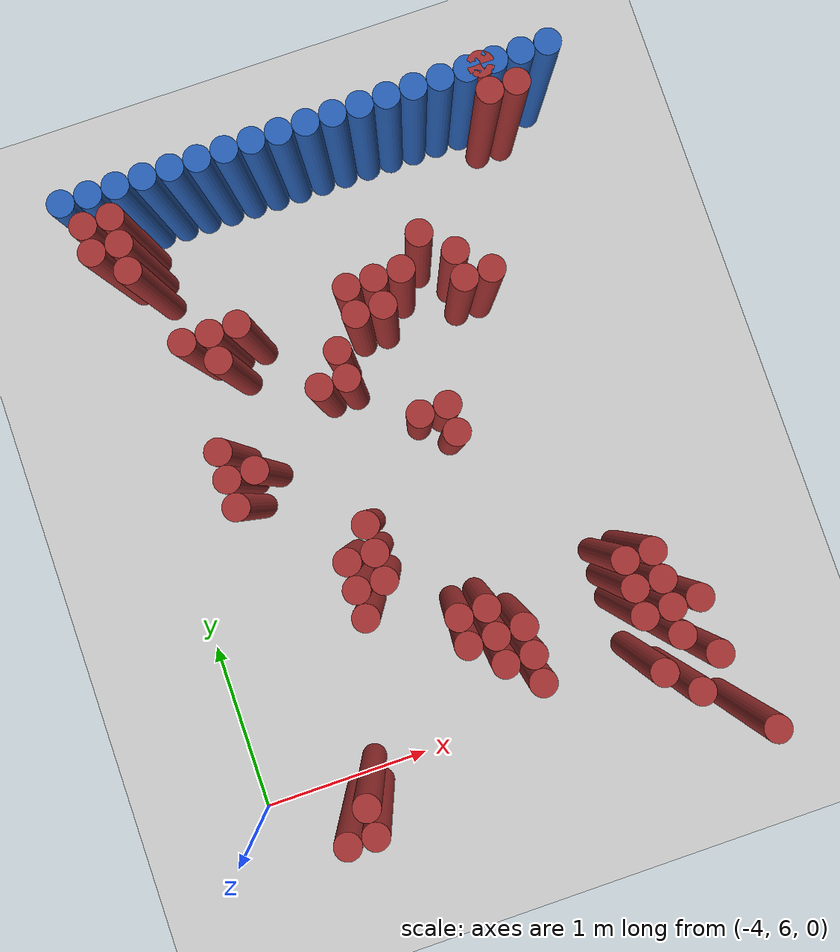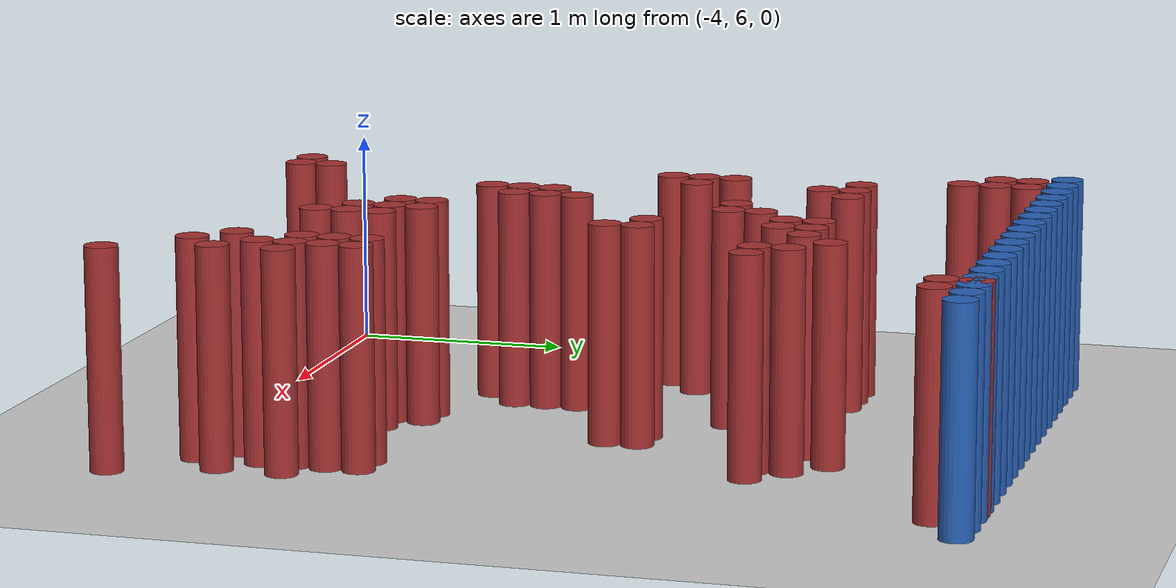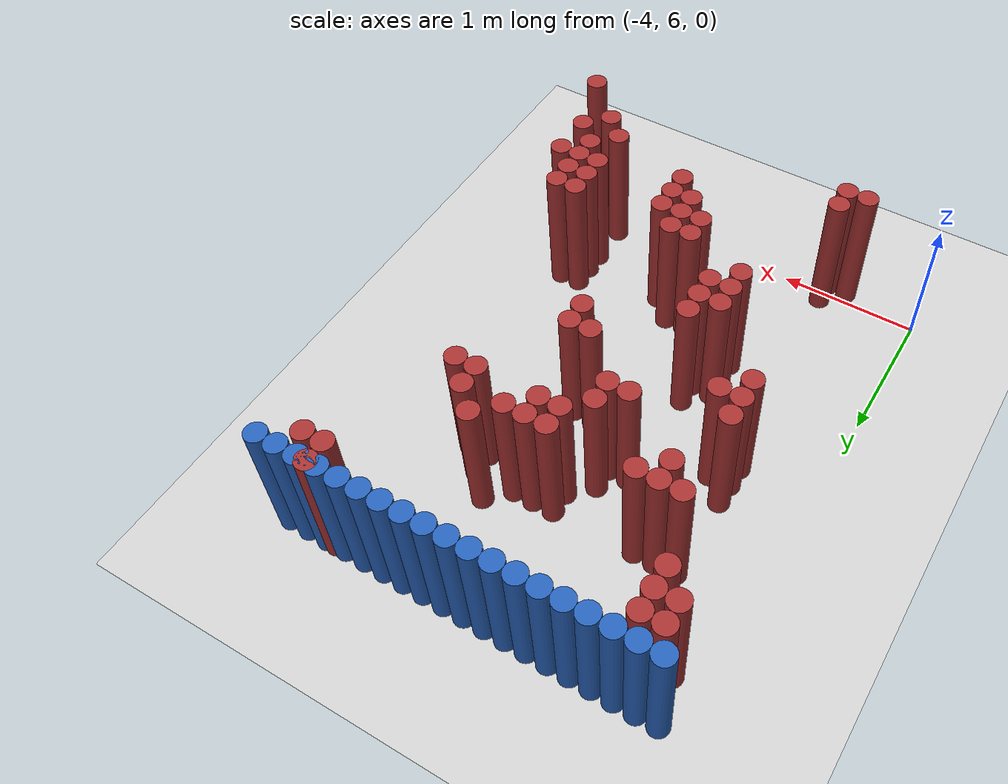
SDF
<sdf version="1.6">
 <world name="barn_world">
  <model name="ground_plane">
   <static>1</static>
   <link name="link">
    <collision name="collision">
     <geometry><plane><normal>0 0 1</normal><size>100 100</size></plane></geometry>
    </collision>
    <visual name="visual">
     <geometry><plane><normal>0 0 1</normal><size>100 100</size></plane></geometry>
     <material>
      <script><uri>file://media/materials/scripts/gazebo.material</uri><name>Gazebo/Grey</name></script>
     </material>
    </visual>
   </link>
  </model>
  <model name="unit_cylinder_188">
   <static>1</static>
   <pose>-3.7500 9.2250 0.5 0 0 0</pose>
   <link name="link">
    <collision name="collision">
     <geometry><cylinder><radius>0.075</radius><length>1</length></cylinder></geometry>
    </collision>
    <visual name="visual">
     <geometry><cylinder><radius>0.075</radius><length>1</length></cylinder></geometry>
     <material><ambient>0.648 0.192 0.192 1</ambient><diffuse>0.648 0.192 0.192 1</diffuse></material>
    </visual>
   </link>
  </model>
  <model name="unit_cylinder_189">
   <static>1</static>
   <pose>-3.7500 9.3750 0.5 0 0 0</pose>
   <link name="link">
    <collision name="collision">
     <geometry><cylinder><radius>0.075</radius><length>1</length></cylinder></geometry>
    </collision>
    <visual name="visual">
     <geometry><cylinder><radius>0.075</radius><length>1</length></cylinder></geometry>
     <material><ambient>0.648 0.192 0.192 1</ambient><diffuse>0.648 0.192 0.192 1</diffuse></material>
    </visual>
   </link>
  </model>
  <model name="unit_cylinder_190">
   <static>1</static>
   <pose>-3.6000 9.0750 0.5 0 0 0</pose>
   <link name="link">
    <collision name="collision">
     <geometry><cylinder><radius>0.075</radius><length>1</length></cylinder></geometry>
    </collision>
    <visual name="visual">
     <geometry><cylinder><radius>0.075</radius><length>1</length></cylinder></geometry>
     <material><ambient>0.648 0.192 0.192 1</ambient><diffuse>0.648 0.192 0.192 1</diffuse></material>
    </visual>
   </link>
  </model>
  <model name="unit_cylinder_191">
   <static>1</static>
   <pose>-3.6000 9.2250 0.5 0 0 0</pose>
   <link name="link">
    <collision name="collision">
     <geometry><cylinder><radius>0.075</radius><length>1</length></cylinder></geometry>
    </collision>
    <visual name="visual">
     <geometry><cylinder><radius>0.075</radius><length>1</length></cylinder></geometry>
     <material><ambient>0.648 0.192 0.192 1</ambient><diffuse>0.648 0.192 0.192 1</diffuse></material>
    </visual>
   </link>
  </model>
  <model name="unit_cylinder_192">
   <static>1</static>
   <pose>-3.6000 9.3750 0.5 0 0 0</pose>
   <link name="link">
    <collision name="collision">
     <geometry><cylinder><radius>0.075</radius><length>1</length></cylinder></geometry>
    </collision>
    <visual name="visual">
     <geometry><cylinder><radius>0.075</radius><length>1</length></cylinder></geometry>
     <material><ambient>0.648 0.192 0.192 1</ambient><diffuse>0.648 0.192 0.192 1</diffuse></material>
    </visual>
   </link>
  </model>
  <model name="unit_cylinder_193">
   <static>1</static>
   <pose>-3.4500 5.9250 0.5 0 0 0</pose>
   <link name="link">
    <collision name="collision">
     <geometry><cylinder><radius>0.075</radius><length>1</length></cylinder></geometry>
    </collision>
    <visual name="visual">
     <geometry><cylinder><radius>0.075</radius><length>1</length></cylinder></geometry>
     <material><ambient>0.648 0.192 0.192 1</ambient><diffuse>0.648 0.192 0.192 1</diffuse></material>
    </visual>
   </link>
  </model>
  <model name="unit_cylinder_194">
   <static>1</static>
   <pose>-3.4500 7.7250 0.5 0 0 0</pose>
   <link name="link">
    <collision name="collision">
     <geometry><cylinder><radius>0.075</radius><length>1</length></cylinder></geometry>
    </collision>
    <visual name="visual">
     <geometry><cylinder><radius>0.075</radius><length>1</length></cylinder></geometry>
     <material><ambient>0.648 0.192 0.192 1</ambient><diffuse>0.648 0.192 0.192 1</diffuse></material>
    </visual>
   </link>
  </model>
  <model name="unit_cylinder_195">
   <static>1</static>
   <pose>-3.4500 7.8750 0.5 0 0 0</pose>
   <link name="link">
    <collision name="collision">
     <geometry><cylinder><radius>0.075</radius><length>1</length></cylinder></geometry>
    </collision>
    <visual name="visual">
     <geometry><cylinder><radius>0.075</radius><length>1</length></cylinder></geometry>
     <material><ambient>0.648 0.192 0.192 1</ambient><diffuse>0.648 0.192 0.192 1</diffuse></material>
    </visual>
   </link>
  </model>
  <model name="unit_cylinder_196">
   <static>1</static>
   <pose>-3.4500 8.0250 0.5 0 0 0</pose>
   <link name="link">
    <collision name="collision">
     <geometry><cylinder><radius>0.075</radius><length>1</length></cylinder></geometry>
    </collision>
    <visual name="visual">
     <geometry><cylinder><radius>0.075</radius><length>1</length></cylinder></geometry>
     <material><ambient>0.648 0.192 0.192 1</ambient><diffuse>0.648 0.192 0.192 1</diffuse></material>
    </visual>
   </link>
  </model>
  <model name="unit_cylinder_197">
   <static>1</static>
   <pose>-3.4500 8.6250 0.5 0 0 0</pose>
   <link name="link">
    <collision name="collision">
     <geometry><cylinder><radius>0.075</radius><length>1</length></cylinder></geometry>
    </collision>
    <visual name="visual">
     <geometry><cylinder><radius>0.075</radius><length>1</length></cylinder></geometry>
     <material><ambient>0.648 0.192 0.192 1</ambient><diffuse>0.648 0.192 0.192 1</diffuse></material>
    </visual>
   </link>
  </model>
  <model name="unit_cylinder_198">
   <static>1</static>
   <pose>-3.3000 5.9250 0.5 0 0 0</pose>
   <link name="link">
    <collision name="collision">
     <geometry><cylinder><radius>0.075</radius><length>1</length></cylinder></geometry>
    </collision>
    <visual name="visual">
     <geometry><cylinder><radius>0.075</radius><length>1</length></cylinder></geometry>
     <material><ambient>0.648 0.192 0.192 1</ambient><diffuse>0.648 0.192 0.192 1</diffuse></material>
    </visual>
   </link>
  </model>
  <model name="unit_cylinder_199">
   <static>1</static>
   <pose>-3.3000 6.0750 0.5 0 0 0</pose>
   <link name="link">
    <collision name="collision">
     <geometry><cylinder><radius>0.075</radius><length>1</length></cylinder></geometry>
    </collision>
    <visual name="visual">
     <geometry><cylinder><radius>0.075</radius><length>1</length></cylinder></geometry>
     <material><ambient>0.648 0.192 0.192 1</ambient><diffuse>0.648 0.192 0.192 1</diffuse></material>
    </visual>
   </link>
  </model>
  <model name="unit_cylinder_200">
   <static>1</static>
   <pose>-3.3000 7.8750 0.5 0 0 0</pose>
   <link name="link">
    <collision name="collision">
     <geometry><cylinder><radius>0.075</radius><length>1</length></cylinder></geometry>
    </collision>
    <visual name="visual">
     <geometry><cylinder><radius>0.075</radius><length>1</length></cylinder></geometry>
     <material><ambient>0.648 0.192 0.192 1</ambient><diffuse>0.648 0.192 0.192 1</diffuse></material>
    </visual>
   </link>
  </model>
  <model name="unit_cylinder_201">
   <static>1</static>
   <pose>-3.3000 8.4750 0.5 0 0 0</pose>
   <link name="link">
    <collision name="collision">
     <geometry><cylinder><radius>0.075</radius><length>1</length></cylinder></geometry>
    </collision>
    <visual name="visual">
     <geometry><cylinder><radius>0.075</radius><length>1</length></cylinder></geometry>
     <material><ambient>0.648 0.192 0.192 1</ambient><diffuse>0.648 0.192 0.192 1</diffuse></material>
    </visual>
   </link>
  </model>
  <model name="unit_cylinder_202">
   <static>1</static>
   <pose>-3.3000 8.6250 0.5 0 0 0</pose>
   <link name="link">
    <collision name="collision">
     <geometry><cylinder><radius>0.075</radius><length>1</length></cylinder></geometry>
    </collision>
    <visual name="visual">
     <geometry><cylinder><radius>0.075</radius><length>1</length></cylinder></geometry>
     <material><ambient>0.648 0.192 0.192 1</ambient><diffuse>0.648 0.192 0.192 1</diffuse></material>
    </visual>
   </link>
  </model>
  <model name="unit_cylinder_203">
   <static>1</static>
   <pose>-3.1500 8.6250 0.5 0 0 0</pose>
   <link name="link">
    <collision name="collision">
     <geometry><cylinder><radius>0.075</radius><length>1</length></cylinder></geometry>
    </collision>
    <visual name="visual">
     <geometry><cylinder><radius>0.075</radius><length>1</length></cylinder></geometry>
     <material><ambient>0.648 0.192 0.192 1</ambient><diffuse>0.648 0.192 0.192 1</diffuse></material>
    </visual>
   </link>
  </model>
  <model name="unit_cylinder_206">
   <static>1</static>
   <pose>-3.0000 6.9750 0.5 0 0 0</pose>
   <link name="link">
    <collision name="collision">
     <geometry><cylinder><radius>0.075</radius><length>1</length></cylinder></geometry>
    </collision>
    <visual name="visual">
     <geometry><cylinder><radius>0.075</radius><length>1</length></cylinder></geometry>
     <material><ambient>0.648 0.192 0.192 1</ambient><diffuse>0.648 0.192 0.192 1</diffuse></material>
    </visual>
   </link>
  </model>
  <model name="unit_cylinder_207">
   <static>1</static>
   <pose>-3.0000 7.1250 0.5 0 0 0</pose>
   <link name="link">
    <collision name="collision">
     <geometry><cylinder><radius>0.075</radius><length>1</length></cylinder></geometry>
    </collision>
    <visual name="visual">
     <geometry><cylinder><radius>0.075</radius><length>1</length></cylinder></geometry>
     <material><ambient>0.648 0.192 0.192 1</ambient><diffuse>0.648 0.192 0.192 1</diffuse></material>
    </visual>
   </link>
  </model>
  <model name="unit_cylinder_208">
   <static>1</static>
   <pose>-3.0000 7.2750 0.5 0 0 0</pose>
   <link name="link">
    <collision name="collision">
     <geometry><cylinder><radius>0.075</radius><length>1</length></cylinder></geometry>
    </collision>
    <visual name="visual">
     <geometry><cylinder><radius>0.075</radius><length>1</length></cylinder></geometry>
     <material><ambient>0.648 0.192 0.192 1</ambient><diffuse>0.648 0.192 0.192 1</diffuse></material>
    </visual>
   </link>
  </model>
  <model name="unit_cylinder_210">
   <static>1</static>
   <pose>-2.8500 7.1250 0.5 0 0 0</pose>
   <link name="link">
    <collision name="collision">
     <geometry><cylinder><radius>0.075</radius><length>1</length></cylinder></geometry>
    </collision>
    <visual name="visual">
     <geometry><cylinder><radius>0.075</radius><length>1</length></cylinder></geometry>
     <material><ambient>0.648 0.192 0.192 1</ambient><diffuse>0.648 0.192 0.192 1</diffuse></material>
    </visual>
   </link>
  </model>
  <model name="unit_cylinder_211">
   <static>1</static>
   <pose>-2.8500 7.2750 0.5 0 0 0</pose>
   <link name="link">
    <collision name="collision">
     <geometry><cylinder><radius>0.075</radius><length>1</length></cylinder></geometry>
    </collision>
    <visual name="visual">
     <geometry><cylinder><radius>0.075</radius><length>1</length></cylinder></geometry>
     <material><ambient>0.648 0.192 0.192 1</ambient><diffuse>0.648 0.192 0.192 1</diffuse></material>
    </visual>
   </link>
  </model>
  <model name="unit_cylinder_212">
   <static>1</static>
   <pose>-2.8500 7.4250 0.5 0 0 0</pose>
   <link name="link">
    <collision name="collision">
     <geometry><cylinder><radius>0.075</radius><length>1</length></cylinder></geometry>
    </collision>
    <visual name="visual">
     <geometry><cylinder><radius>0.075</radius><length>1</length></cylinder></geometry>
     <material><ambient>0.648 0.192 0.192 1</ambient><diffuse>0.648 0.192 0.192 1</diffuse></material>
    </visual>
   </link>
  </model>
  <model name="unit_cylinder_213">
   <static>1</static>
   <pose>-2.8500 8.1750 0.5 0 0 0</pose>
   <link name="link">
    <collision name="collision">
     <geometry><cylinder><radius>0.075</radius><length>1</length></cylinder></geometry>
    </collision>
    <visual name="visual">
     <geometry><cylinder><radius>0.075</radius><length>1</length></cylinder></geometry>
     <material><ambient>0.648 0.192 0.192 1</ambient><diffuse>0.648 0.192 0.192 1</diffuse></material>
    </visual>
   </link>
  </model>
  <model name="unit_cylinder_216">
   <static>1</static>
   <pose>-2.7000 8.1750 0.5 0 0 0</pose>
   <link name="link">
    <collision name="collision">
     <geometry><cylinder><radius>0.075</radius><length>1</length></cylinder></geometry>
    </collision>
    <visual name="visual">
     <geometry><cylinder><radius>0.075</radius><length>1</length></cylinder></geometry>
     <material><ambient>0.648 0.192 0.192 1</ambient><diffuse>0.648 0.192 0.192 1</diffuse></material>
    </visual>
   </link>
  </model>
  <model name="unit_cylinder_217">
   <static>1</static>
   <pose>-2.7000 8.3250 0.5 0 0 0</pose>
   <link name="link">
    <collision name="collision">
     <geometry><cylinder><radius>0.075</radius><length>1</length></cylinder></geometry>
    </collision>
    <visual name="visual">
     <geometry><cylinder><radius>0.075</radius><length>1</length></cylinder></geometry>
     <material><ambient>0.648 0.192 0.192 1</ambient><diffuse>0.648 0.192 0.192 1</diffuse></material>
    </visual>
   </link>
  </model>
  <model name="unit_cylinder_218">
   <static>1</static>
   <pose>-2.5500 6.6750 0.5 0 0 0</pose>
   <link name="link">
    <collision name="collision">
     <geometry><cylinder><radius>0.075</radius><length>1</length></cylinder></geometry>
    </collision>
    <visual name="visual">
     <geometry><cylinder><radius>0.075</radius><length>1</length></cylinder></geometry>
     <material><ambient>0.648 0.192 0.192 1</ambient><diffuse>0.648 0.192 0.192 1</diffuse></material>
    </visual>
   </link>
  </model>
  <model name="unit_cylinder_219">
   <static>1</static>
   <pose>-2.5500 6.8250 0.5 0 0 0</pose>
   <link name="link">
    <collision name="collision">
     <geometry><cylinder><radius>0.075</radius><length>1</length></cylinder></geometry>
    </collision>
    <visual name="visual">
     <geometry><cylinder><radius>0.075</radius><length>1</length></cylinder></geometry>
     <material><ambient>0.648 0.192 0.192 1</ambient><diffuse>0.648 0.192 0.192 1</diffuse></material>
    </visual>
   </link>
  </model>
  <model name="unit_cylinder_220">
   <static>1</static>
   <pose>-2.5500 8.4750 0.5 0 0 0</pose>
   <link name="link">
    <collision name="collision">
     <geometry><cylinder><radius>0.075</radius><length>1</length></cylinder></geometry>
    </collision>
    <visual name="visual">
     <geometry><cylinder><radius>0.075</radius><length>1</length></cylinder></geometry>
     <material><ambient>0.648 0.192 0.192 1</ambient><diffuse>0.648 0.192 0.192 1</diffuse></material>
    </visual>
   </link>
  </model>
  <model name="unit_cylinder_221">
   <static>1</static>
   <pose>-2.5500 8.6250 0.5 0 0 0</pose>
   <link name="link">
    <collision name="collision">
     <geometry><cylinder><radius>0.075</radius><length>1</length></cylinder></geometry>
    </collision>
    <visual name="visual">
     <geometry><cylinder><radius>0.075</radius><length>1</length></cylinder></geometry>
     <material><ambient>0.648 0.192 0.192 1</ambient><diffuse>0.648 0.192 0.192 1</diffuse></material>
    </visual>
   </link>
  </model>
  <model name="unit_cylinder_222">
   <static>1</static>
   <pose>-2.4000 6.5250 0.5 0 0 0</pose>
   <link name="link">
    <collision name="collision">
     <geometry><cylinder><radius>0.075</radius><length>1</length></cylinder></geometry>
    </collision>
    <visual name="visual">
     <geometry><cylinder><radius>0.075</radius><length>1</length></cylinder></geometry>
     <material><ambient>0.648 0.192 0.192 1</ambient><diffuse>0.648 0.192 0.192 1</diffuse></material>
    </visual>
   </link>
  </model>
  <model name="unit_cylinder_223">
   <static>1</static>
   <pose>-2.4000 6.6750 0.5 0 0 0</pose>
   <link name="link">
    <collision name="collision">
     <geometry><cylinder><radius>0.075</radius><length>1</length></cylinder></geometry>
    </collision>
    <visual name="visual">
     <geometry><cylinder><radius>0.075</radius><length>1</length></cylinder></geometry>
     <material><ambient>0.648 0.192 0.192 1</ambient><diffuse>0.648 0.192 0.192 1</diffuse></material>
    </visual>
   </link>
  </model>
  <model name="unit_cylinder_224">
   <static>1</static>
   <pose>-2.4000 6.8250 0.5 0 0 0</pose>
   <link name="link">
    <collision name="collision">
     <geometry><cylinder><radius>0.075</radius><length>1</length></cylinder></geometry>
    </collision>
    <visual name="visual">
     <geometry><cylinder><radius>0.075</radius><length>1</length></cylinder></geometry>
     <material><ambient>0.648 0.192 0.192 1</ambient><diffuse>0.648 0.192 0.192 1</diffuse></material>
    </visual>
   </link>
  </model>
  <model name="unit_cylinder_225">
   <static>1</static>
   <pose>-2.4000 7.8750 0.5 0 0 0</pose>
   <link name="link">
    <collision name="collision">
     <geometry><cylinder><radius>0.075</radius><length>1</length></cylinder></geometry>
    </collision>
    <visual name="visual">
     <geometry><cylinder><radius>0.075</radius><length>1</length></cylinder></geometry>
     <material><ambient>0.648 0.192 0.192 1</ambient><diffuse>0.648 0.192 0.192 1</diffuse></material>
    </visual>
   </link>
  </model>
  <model name="unit_cylinder_226">
   <static>1</static>
   <pose>-2.4000 8.4750 0.5 0 0 0</pose>
   <link name="link">
    <collision name="collision">
     <geometry><cylinder><radius>0.075</radius><length>1</length></cylinder></geometry>
    </collision>
    <visual name="visual">
     <geometry><cylinder><radius>0.075</radius><length>1</length></cylinder></geometry>
     <material><ambient>0.648 0.192 0.192 1</ambient><diffuse>0.648 0.192 0.192 1</diffuse></material>
    </visual>
   </link>
  </model>
  <model name="unit_cylinder_227">
   <static>1</static>
   <pose>-2.4000 8.6250 0.5 0 0 0</pose>
   <link name="link">
    <collision name="collision">
     <geometry><cylinder><radius>0.075</radius><length>1</length></cylinder></geometry>
    </collision>
    <visual name="visual">
     <geometry><cylinder><radius>0.075</radius><length>1</length></cylinder></geometry>
     <material><ambient>0.648 0.192 0.192 1</ambient><diffuse>0.648 0.192 0.192 1</diffuse></material>
    </visual>
   </link>
  </model>
  <model name="unit_cylinder_228">
   <static>1</static>
   <pose>-2.2500 6.3750 0.5 0 0 0</pose>
   <link name="link">
    <collision name="collision">
     <geometry><cylinder><radius>0.075</radius><length>1</length></cylinder></geometry>
    </collision>
    <visual name="visual">
     <geometry><cylinder><radius>0.075</radius><length>1</length></cylinder></geometry>
     <material><ambient>0.648 0.192 0.192 1</ambient><diffuse>0.648 0.192 0.192 1</diffuse></material>
    </visual>
   </link>
  </model>
  <model name="unit_cylinder_229">
   <static>1</static>
   <pose>-2.2500 6.5250 0.5 0 0 0</pose>
   <link name="link">
    <collision name="collision">
     <geometry><cylinder><radius>0.075</radius><length>1</length></cylinder></geometry>
    </collision>
    <visual name="visual">
     <geometry><cylinder><radius>0.075</radius><length>1</length></cylinder></geometry>
     <material><ambient>0.648 0.192 0.192 1</ambient><diffuse>0.648 0.192 0.192 1</diffuse></material>
    </visual>
   </link>
  </model>
  <model name="unit_cylinder_230">
   <static>1</static>
   <pose>-2.2500 6.6750 0.5 0 0 0</pose>
   <link name="link">
    <collision name="collision">
     <geometry><cylinder><radius>0.075</radius><length>1</length></cylinder></geometry>
    </collision>
    <visual name="visual">
     <geometry><cylinder><radius>0.075</radius><length>1</length></cylinder></geometry>
     <material><ambient>0.648 0.192 0.192 1</ambient><diffuse>0.648 0.192 0.192 1</diffuse></material>
    </visual>
   </link>
  </model>
  <model name="unit_cylinder_231">
   <static>1</static>
   <pose>-2.2500 7.7250 0.5 0 0 0</pose>
   <link name="link">
    <collision name="collision">
     <geometry><cylinder><radius>0.075</radius><length>1</length></cylinder></geometry>
    </collision>
    <visual name="visual">
     <geometry><cylinder><radius>0.075</radius><length>1</length></cylinder></geometry>
     <material><ambient>0.648 0.192 0.192 1</ambient><diffuse>0.648 0.192 0.192 1</diffuse></material>
    </visual>
   </link>
  </model>
  <model name="unit_cylinder_232">
   <static>1</static>
   <pose>-2.2500 7.8750 0.5 0 0 0</pose>
   <link name="link">
    <collision name="collision">
     <geometry><cylinder><radius>0.075</radius><length>1</length></cylinder></geometry>
    </collision>
    <visual name="visual">
     <geometry><cylinder><radius>0.075</radius><length>1</length></cylinder></geometry>
     <material><ambient>0.648 0.192 0.192 1</ambient><diffuse>0.648 0.192 0.192 1</diffuse></material>
    </visual>
   </link>
  </model>
  <model name="unit_cylinder_233">
   <static>1</static>
   <pose>-2.2500 8.6250 0.5 0 0 0</pose>
   <link name="link">
    <collision name="collision">
     <geometry><cylinder><radius>0.075</radius><length>1</length></cylinder></geometry>
    </collision>
    <visual name="visual">
     <geometry><cylinder><radius>0.075</radius><length>1</length></cylinder></geometry>
     <material><ambient>0.648 0.192 0.192 1</ambient><diffuse>0.648 0.192 0.192 1</diffuse></material>
    </visual>
   </link>
  </model>
  <model name="unit_cylinder_234">
   <static>1</static>
   <pose>-2.1000 8.7750 0.5 0 0 0</pose>
   <link name="link">
    <collision name="collision">
     <geometry><cylinder><radius>0.075</radius><length>1</length></cylinder></geometry>
    </collision>
    <visual name="visual">
     <geometry><cylinder><radius>0.075</radius><length>1</length></cylinder></geometry>
     <material><ambient>0.648 0.192 0.192 1</ambient><diffuse>0.648 0.192 0.192 1</diffuse></material>
    </visual>
   </link>
  </model>
  <model name="unit_cylinder_235">
   <static>1</static>
   <pose>-1.9500 8.4750 0.5 0 0 0</pose>
   <link name="link">
    <collision name="collision">
     <geometry><cylinder><radius>0.075</radius><length>1</length></cylinder></geometry>
    </collision>
    <visual name="visual">
     <geometry><cylinder><radius>0.075</radius><length>1</length></cylinder></geometry>
     <material><ambient>0.648 0.192 0.192 1</ambient><diffuse>0.648 0.192 0.192 1</diffuse></material>
    </visual>
   </link>
  </model>
  <model name="unit_cylinder_236">
   <static>1</static>
   <pose>-1.9500 8.6250 0.5 0 0 0</pose>
   <link name="link">
    <collision name="collision">
     <geometry><cylinder><radius>0.075</radius><length>1</length></cylinder></geometry>
    </collision>
    <visual name="visual">
     <geometry><cylinder><radius>0.075</radius><length>1</length></cylinder></geometry>
     <material><ambient>0.648 0.192 0.192 1</ambient><diffuse>0.648 0.192 0.192 1</diffuse></material>
    </visual>
   </link>
  </model>
  <model name="unit_cylinder_237">
   <static>1</static>
   <pose>-1.8000 8.4750 0.5 0 0 0</pose>
   <link name="link">
    <collision name="collision">
     <geometry><cylinder><radius>0.075</radius><length>1</length></cylinder></geometry>
    </collision>
    <visual name="visual">
     <geometry><cylinder><radius>0.075</radius><length>1</length></cylinder></geometry>
     <material><ambient>0.648 0.192 0.192 1</ambient><diffuse>0.648 0.192 0.192 1</diffuse></material>
    </visual>
   </link>
  </model>
  <model name="unit_cylinder_238">
   <static>1</static>
   <pose>-1.6500 6.2250 0.5 0 0 0</pose>
   <link name="link">
    <collision name="collision">
     <geometry><cylinder><radius>0.075</radius><length>1</length></cylinder></geometry>
    </collision>
    <visual name="visual">
     <geometry><cylinder><radius>0.075</radius><length>1</length></cylinder></geometry>
     <material><ambient>0.648 0.192 0.192 1</ambient><diffuse>0.648 0.192 0.192 1</diffuse></material>
    </visual>
   </link>
  </model>
  <model name="unit_cylinder_239">
   <static>1</static>
   <pose>-1.6500 6.5250 0.5 0 0 0</pose>
   <link name="link">
    <collision name="collision">
     <geometry><cylinder><radius>0.075</radius><length>1</length></cylinder></geometry>
    </collision>
    <visual name="visual">
     <geometry><cylinder><radius>0.075</radius><length>1</length></cylinder></geometry>
     <material><ambient>0.648 0.192 0.192 1</ambient><diffuse>0.648 0.192 0.192 1</diffuse></material>
    </visual>
   </link>
  </model>
  <model name="unit_cylinder_240">
   <static>1</static>
   <pose>-1.6500 6.6750 0.5 0 0 0</pose>
   <link name="link">
    <collision name="collision">
     <geometry><cylinder><radius>0.075</radius><length>1</length></cylinder></geometry>
    </collision>
    <visual name="visual">
     <geometry><cylinder><radius>0.075</radius><length>1</length></cylinder></geometry>
     <material><ambient>0.648 0.192 0.192 1</ambient><diffuse>0.648 0.192 0.192 1</diffuse></material>
    </visual>
   </link>
  </model>
  <model name="unit_cylinder_241">
   <static>1</static>
   <pose>-1.6500 6.8250 0.5 0 0 0</pose>
   <link name="link">
    <collision name="collision">
     <geometry><cylinder><radius>0.075</radius><length>1</length></cylinder></geometry>
    </collision>
    <visual name="visual">
     <geometry><cylinder><radius>0.075</radius><length>1</length></cylinder></geometry>
     <material><ambient>0.648 0.192 0.192 1</ambient><diffuse>0.648 0.192 0.192 1</diffuse></material>
    </visual>
   </link>
  </model>
  <model name="unit_cylinder_242">
   <static>1</static>
   <pose>-1.5000 6.0750 0.5 0 0 0</pose>
   <link name="link">
    <collision name="collision">
     <geometry><cylinder><radius>0.075</radius><length>1</length></cylinder></geometry>
    </collision>
    <visual name="visual">
     <geometry><cylinder><radius>0.075</radius><length>1</length></cylinder></geometry>
     <material><ambient>0.648 0.192 0.192 1</ambient><diffuse>0.648 0.192 0.192 1</diffuse></material>
    </visual>
   </link>
  </model>
  <model name="unit_cylinder_243">
   <static>1</static>
   <pose>-1.5000 6.3750 0.5 0 0 0</pose>
   <link name="link">
    <collision name="collision">
     <geometry><cylinder><radius>0.075</radius><length>1</length></cylinder></geometry>
    </collision>
    <visual name="visual">
     <geometry><cylinder><radius>0.075</radius><length>1</length></cylinder></geometry>
     <material><ambient>0.648 0.192 0.192 1</ambient><diffuse>0.648 0.192 0.192 1</diffuse></material>
    </visual>
   </link>
  </model>
  <model name="unit_cylinder_244">
   <static>1</static>
   <pose>-1.5000 6.5250 0.5 0 0 0</pose>
   <link name="link">
    <collision name="collision">
     <geometry><cylinder><radius>0.075</radius><length>1</length></cylinder></geometry>
    </collision>
    <visual name="visual">
     <geometry><cylinder><radius>0.075</radius><length>1</length></cylinder></geometry>
     <material><ambient>0.648 0.192 0.192 1</ambient><diffuse>0.648 0.192 0.192 1</diffuse></material>
    </visual>
   </link>
  </model>
  <model name="unit_cylinder_245">
   <static>1</static>
   <pose>-1.5000 6.6750 0.5 0 0 0</pose>
   <link name="link">
    <collision name="collision">
     <geometry><cylinder><radius>0.075</radius><length>1</length></cylinder></geometry>
    </collision>
    <visual name="visual">
     <geometry><cylinder><radius>0.075</radius><length>1</length></cylinder></geometry>
     <material><ambient>0.648 0.192 0.192 1</ambient><diffuse>0.648 0.192 0.192 1</diffuse></material>
    </visual>
   </link>
  </model>
  <model name="unit_cylinder_246">
   <static>1</static>
   <pose>-1.5000 6.8250 0.5 0 0 0</pose>
   <link name="link">
    <collision name="collision">
     <geometry><cylinder><radius>0.075</radius><length>1</length></cylinder></geometry>
    </collision>
    <visual name="visual">
     <geometry><cylinder><radius>0.075</radius><length>1</length></cylinder></geometry>
     <material><ambient>0.648 0.192 0.192 1</ambient><diffuse>0.648 0.192 0.192 1</diffuse></material>
    </visual>
   </link>
  </model>
  <model name="unit_cylinder_247">
   <static>1</static>
   <pose>-1.5000 9.3750 0.5 0 0 0</pose>
   <link name="link">
    <collision name="collision">
     <geometry><cylinder><radius>0.075</radius><length>1</length></cylinder></geometry>
    </collision>
    <visual name="visual">
     <geometry><cylinder><radius>0.075</radius><length>1</length></cylinder></geometry>
     <material><ambient>0.648 0.192 0.192 1</ambient><diffuse>0.648 0.192 0.192 1</diffuse></material>
    </visual>
   </link>
  </model>
  <model name="unit_cylinder_248">
   <static>1</static>
   <pose>-1.5000 9.5250 0.5 0 0 0</pose>
   <link name="link">
    <collision name="collision">
     <geometry><cylinder><radius>0.075</radius><length>1</length></cylinder></geometry>
    </collision>
    <visual name="visual">
     <geometry><cylinder><radius>0.075</radius><length>1</length></cylinder></geometry>
     <material><ambient>0.648 0.192 0.192 1</ambient><diffuse>0.648 0.192 0.192 1</diffuse></material>
    </visual>
   </link>
  </model>
  <model name="unit_cylinder_250">
   <static>1</static>
   <pose>-1.3500 6.2250 0.5 0 0 0</pose>
   <link name="link">
    <collision name="collision">
     <geometry><cylinder><radius>0.075</radius><length>1</length></cylinder></geometry>
    </collision>
    <visual name="visual">
     <geometry><cylinder><radius>0.075</radius><length>1</length></cylinder></geometry>
     <material><ambient>0.648 0.192 0.192 1</ambient><diffuse>0.648 0.192 0.192 1</diffuse></material>
    </visual>
   </link>
  </model>
  <model name="unit_cylinder_251">
   <static>1</static>
   <pose>-1.3500 6.5250 0.5 0 0 0</pose>
   <link name="link">
    <collision name="collision">
     <geometry><cylinder><radius>0.075</radius><length>1</length></cylinder></geometry>
    </collision>
    <visual name="visual">
     <geometry><cylinder><radius>0.075</radius><length>1</length></cylinder></geometry>
     <material><ambient>0.648 0.192 0.192 1</ambient><diffuse>0.648 0.192 0.192 1</diffuse></material>
    </visual>
   </link>
  </model>
  <model name="unit_cylinder_252">
   <static>1</static>
   <pose>-1.3500 9.3750 0.5 0 0 0</pose>
   <link name="link">
    <collision name="collision">
     <geometry><cylinder><radius>0.075</radius><length>1</length></cylinder></geometry>
    </collision>
    <visual name="visual">
     <geometry><cylinder><radius>0.075</radius><length>1</length></cylinder></geometry>
     <material><ambient>0.648 0.192 0.192 1</ambient><diffuse>0.648 0.192 0.192 1</diffuse></material>
    </visual>
   </link>
  </model>
  <model name="unit_cylinder_254">
   <static>1</static>
   <pose>-1.2000 5.7750 0.5 0 0 0</pose>
   <link name="link">
    <collision name="collision">
     <geometry><cylinder><radius>0.075</radius><length>1</length></cylinder></geometry>
    </collision>
    <visual name="visual">
     <geometry><cylinder><radius>0.075</radius><length>1</length></cylinder></geometry>
     <material><ambient>0.648 0.192 0.192 1</ambient><diffuse>0.648 0.192 0.192 1</diffuse></material>
    </visual>
   </link>
  </model>
  <model name="unit_cylinder_316">
   <static>1</static>
   <pose>-1.1250 9.5250 0.5 0 0 0</pose>
   <link name="link">
    <collision name="collision">
     <geometry><cylinder><radius>0.075</radius><length>1</length></cylinder></geometry>
    </collision>
    <visual name="visual">
     <geometry><cylinder><radius>0.075</radius><length>1</length></cylinder></geometry>
     <material><ambient>0.152 0.379 0.72 1</ambient><diffuse>0.152 0.379 0.72 1</diffuse></material>
    </visual>
   </link>
  </model>
  <model name="unit_cylinder_317">
   <static>1</static>
   <pose>-1.2750 9.5250 0.5 0 0 0</pose>
   <link name="link">
    <collision name="collision">
     <geometry><cylinder><radius>0.075</radius><length>1</length></cylinder></geometry>
    </collision>
    <visual name="visual">
     <geometry><cylinder><radius>0.075</radius><length>1</length></cylinder></geometry>
     <material><ambient>0.152 0.379 0.72 1</ambient><diffuse>0.152 0.379 0.72 1</diffuse></material>
    </visual>
   </link>
  </model>
  <model name="unit_cylinder_318">
   <static>1</static>
   <pose>-1.4250 9.5250 0.5 0 0 0</pose>
   <link name="link">
    <collision name="collision">
     <geometry><cylinder><radius>0.075</radius><length>1</length></cylinder></geometry>
    </collision>
    <visual name="visual">
     <geometry><cylinder><radius>0.075</radius><length>1</length></cylinder></geometry>
     <material><ambient>0.152 0.379 0.72 1</ambient><diffuse>0.152 0.379 0.72 1</diffuse></material>
    </visual>
   </link>
  </model>
  <model name="unit_cylinder_319">
   <static>1</static>
   <pose>-1.5750 9.5250 0.5 0 0 0</pose>
   <link name="link">
    <collision name="collision">
     <geometry><cylinder><radius>0.075</radius><length>1</length></cylinder></geometry>
    </collision>
    <visual name="visual">
     <geometry><cylinder><radius>0.075</radius><length>1</length></cylinder></geometry>
     <material><ambient>0.152 0.379 0.72 1</ambient><diffuse>0.152 0.379 0.72 1</diffuse></material>
    </visual>
   </link>
  </model>
  <model name="unit_cylinder_320">
   <static>1</static>
   <pose>-1.7250 9.5250 0.5 0 0 0</pose>
   <link name="link">
    <collision name="collision">
     <geometry><cylinder><radius>0.075</radius><length>1</length></cylinder></geometry>
    </collision>
    <visual name="visual">
     <geometry><cylinder><radius>0.075</radius><length>1</length></cylinder></geometry>
     <material><ambient>0.152 0.379 0.72 1</ambient><diffuse>0.152 0.379 0.72 1</diffuse></material>
    </visual>
   </link>
  </model>
  <model name="unit_cylinder_321">
   <static>1</static>
   <pose>-1.8750 9.5250 0.5 0 0 0</pose>
   <link name="link">
    <collision name="collision">
     <geometry><cylinder><radius>0.075</radius><length>1</length></cylinder></geometry>
    </collision>
    <visual name="visual">
     <geometry><cylinder><radius>0.075</radius><length>1</length></cylinder></geometry>
     <material><ambient>0.152 0.379 0.72 1</ambient><diffuse>0.152 0.379 0.72 1</diffuse></material>
    </visual>
   </link>
  </model>
  <model name="unit_cylinder_322">
   <static>1</static>
   <pose>-2.0250 9.5250 0.5 0 0 0</pose>
   <link name="link">
    <collision name="collision">
     <geometry><cylinder><radius>0.075</radius><length>1</length></cylinder></geometry>
    </collision>
    <visual name="visual">
     <geometry><cylinder><radius>0.075</radius><length>1</length></cylinder></geometry>
     <material><ambient>0.152 0.379 0.72 1</ambient><diffuse>0.152 0.379 0.72 1</diffuse></material>
    </visual>
   </link>
  </model>
  <model name="unit_cylinder_323">
   <static>1</static>
   <pose>-2.1750 9.5250 0.5 0 0 0</pose>
   <link name="link">
    <collision name="collision">
     <geometry><cylinder><radius>0.075</radius><length>1</length></cylinder></geometry>
    </collision>
    <visual name="visual">
     <geometry><cylinder><radius>0.075</radius><length>1</length></cylinder></geometry>
     <material><ambient>0.152 0.379 0.72 1</ambient><diffuse>0.152 0.379 0.72 1</diffuse></material>
    </visual>
   </link>
  </model>
  <model name="unit_cylinder_324">
   <static>1</static>
   <pose>-2.3250 9.5250 0.5 0 0 0</pose>
   <link name="link">
    <collision name="collision">
     <geometry><cylinder><radius>0.075</radius><length>1</length></cylinder></geometry>
    </collision>
    <visual name="visual">
     <geometry><cylinder><radius>0.075</radius><length>1</length></cylinder></geometry>
     <material><ambient>0.152 0.379 0.72 1</ambient><diffuse>0.152 0.379 0.72 1</diffuse></material>
    </visual>
   </link>
  </model>
  <model name="unit_cylinder_325">
   <static>1</static>
   <pose>-2.4750 9.5250 0.5 0 0 0</pose>
   <link name="link">
    <collision name="collision">
     <geometry><cylinder><radius>0.075</radius><length>1</length></cylinder></geometry>
    </collision>
    <visual name="visual">
     <geometry><cylinder><radius>0.075</radius><length>1</length></cylinder></geometry>
     <material><ambient>0.152 0.379 0.72 1</ambient><diffuse>0.152 0.379 0.72 1</diffuse></material>
    </visual>
   </link>
  </model>
  <model name="unit_cylinder_326">
   <static>1</static>
   <pose>-2.6250 9.5250 0.5 0 0 0</pose>
   <link name="link">
    <collision name="collision">
     <geometry><cylinder><radius>0.075</radius><length>1</length></cylinder></geometry>
    </collision>
    <visual name="visual">
     <geometry><cylinder><radius>0.075</radius><length>1</length></cylinder></geometry>
     <material><ambient>0.152 0.379 0.72 1</ambient><diffuse>0.152 0.379 0.72 1</diffuse></material>
    </visual>
   </link>
  </model>
  <model name="unit_cylinder_327">
   <static>1</static>
   <pose>-2.7750 9.5250 0.5 0 0 0</pose>
   <link name="link">
    <collision name="collision">
     <geometry><cylinder><radius>0.075</radius><length>1</length></cylinder></geometry>
    </collision>
    <visual name="visual">
     <geometry><cylinder><radius>0.075</radius><length>1</length></cylinder></geometry>
     <material><ambient>0.152 0.379 0.72 1</ambient><diffuse>0.152 0.379 0.72 1</diffuse></material>
    </visual>
   </link>
  </model>
  <model name="unit_cylinder_328">
   <static>1</static>
   <pose>-2.9250 9.5250 0.5 0 0 0</pose>
   <link name="link">
    <collision name="collision">
     <geometry><cylinder><radius>0.075</radius><length>1</length></cylinder></geometry>
    </collision>
    <visual name="visual">
     <geometry><cylinder><radius>0.075</radius><length>1</length></cylinder></geometry>
     <material><ambient>0.152 0.379 0.72 1</ambient><diffuse>0.152 0.379 0.72 1</diffuse></material>
    </visual>
   </link>
  </model>
  <model name="unit_cylinder_329">
   <static>1</static>
   <pose>-3.0750 9.5250 0.5 0 0 0</pose>
   <link name="link">
    <collision name="collision">
     <geometry><cylinder><radius>0.075</radius><length>1</length></cylinder></geometry>
    </collision>
    <visual name="visual">
     <geometry><cylinder><radius>0.075</radius><length>1</length></cylinder></geometry>
     <material><ambient>0.152 0.379 0.72 1</ambient><diffuse>0.152 0.379 0.72 1</diffuse></material>
    </visual>
   </link>
  </model>
  <model name="unit_cylinder_330">
   <static>1</static>
   <pose>-3.2250 9.5250 0.5 0 0 0</pose>
   <link name="link">
    <collision name="collision">
     <geometry><cylinder><radius>0.075</radius><length>1</length></cylinder></geometry>
    </collision>
    <visual name="visual">
     <geometry><cylinder><radius>0.075</radius><length>1</length></cylinder></geometry>
     <material><ambient>0.152 0.379 0.72 1</ambient><diffuse>0.152 0.379 0.72 1</diffuse></material>
    </visual>
   </link>
  </model>
  <model name="unit_cylinder_331">
   <static>1</static>
   <pose>-3.3750 9.5250 0.5 0 0 0</pose>
   <link name="link">
    <collision name="collision">
     <geometry><cylinder><radius>0.075</radius><length>1</length></cylinder></geometry>
    </collision>
    <visual name="visual">
     <geometry><cylinder><radius>0.075</radius><length>1</length></cylinder></geometry>
     <material><ambient>0.152 0.379 0.72 1</ambient><diffuse>0.152 0.379 0.72 1</diffuse></material>
    </visual>
   </link>
  </model>
  <model name="unit_cylinder_332">
   <static>1</static>
   <pose>-3.5250 9.5250 0.5 0 0 0</pose>
   <link name="link">
    <collision name="collision">
     <geometry><cylinder><radius>0.075</radius><length>1</length></cylinder></geometry>
    </collision>
    <visual name="visual">
     <geometry><cylinder><radius>0.075</radius><length>1</length></cylinder></geometry>
     <material><ambient>0.152 0.379 0.72 1</ambient><diffuse>0.152 0.379 0.72 1</diffuse></material>
    </visual>
   </link>
  </model>
  <model name="unit_cylinder_333">
   <static>1</static>
   <pose>-3.6750 9.5250 0.5 0 0 0</pose>
   <link name="link">
    <collision name="collision">
     <geometry><cylinder><radius>0.075</radius><length>1</length></cylinder></geometry>
    </collision>
    <visual name="visual">
     <geometry><cylinder><radius>0.075</radius><length>1</length></cylinder></geometry>
     <material><ambient>0.152 0.379 0.72 1</ambient><diffuse>0.152 0.379 0.72 1</diffuse></material>
    </visual>
   </link>
  </model>
  <model name="unit_cylinder_334">
   <static>1</static>
   <pose>-3.8250 9.5250 0.5 0 0 0</pose>
   <link name="link">
    <collision name="collision">
     <geometry><cylinder><radius>0.075</radius><length>1</length></cylinder></geometry>
    </collision>
    <visual name="visual">
     <geometry><cylinder><radius>0.075</radius><length>1</length></cylinder></geometry>
     <material><ambient>0.152 0.379 0.72 1</ambient><diffuse>0.152 0.379 0.72 1</diffuse></material>
    </visual>
   </link>
  </model>
 </world>
</sdf>
